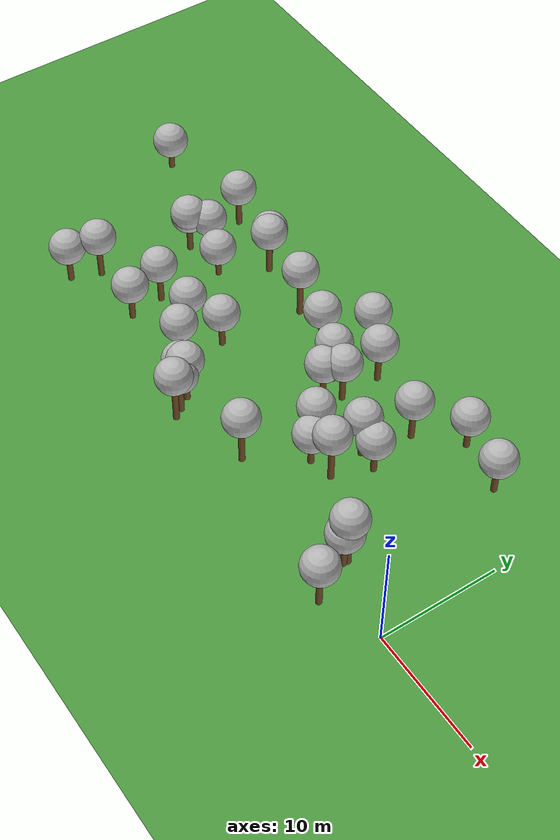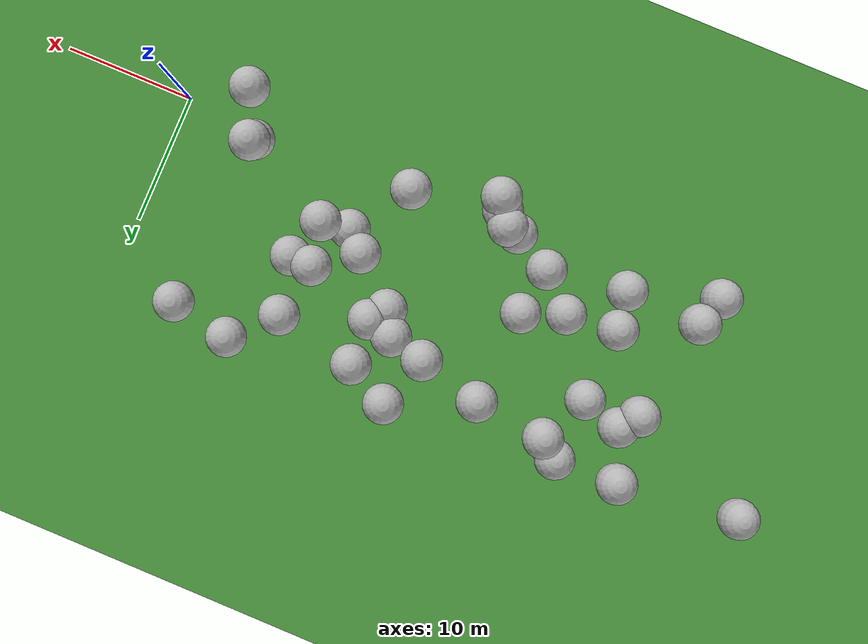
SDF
<sdf version="1.5">
 <world name="default">
  <model name="tree_simple498">
   <static>1</static>
   <link name="link">
    <pose>0 0 0.1 0 -0 0</pose>
    <collision name="collision_trunk">
     <pose>0 0 2 0 -0 0</pose>
     <geometry><cylinder><radius>0.25</radius><length>4</length></cylinder></geometry>
    </collision>
    <collision name="collision_treetop">
     <pose>0 0 5.2 0 -0 0</pose>
     <geometry><sphere><radius>1.5</radius></sphere></geometry>
    </collision>
    <visual name="trunk">
     <pose>0 0 2 0 -0 0</pose>
     <geometry><cylinder><radius>0.25</radius><length>4</length></cylinder></geometry>
     <material>
      <script>
       <uri>model://tree_simple/scripts</uri>
       <uri>model://tree_simple/materials/textures</uri>
       <name>TreeSimple/Trunk</name>
      </script>
     </material>
    </visual>
    <visual name="treetop">
     <pose>0 0 5.2 0 -0 0</pose>
     <geometry><sphere><radius>1.5</radius></sphere></geometry>
     <material>
      <script>
       <uri>model://tree_simple/scripts</uri>
       <uri>model://tree_simple/materials/textures</uri>
       <name>TreeSimple/Treetop</name>
      </script>
     </material>
    </visual>
   </link>
   <pose>-20.062069779 9.09254194943 -1.4793378975880083 0 -0 0</pose>
  </model>
  <model name="tree_simple488">
   <static>1</static>
   <link name="link">
    <pose>0 0 0.1 0 -0 0</pose>
    <collision name="collision_trunk">
     <pose>0 0 2 0 -0 0</pose>
     <geometry><cylinder><radius>0.25</radius><length>4</length></cylinder></geometry>
    </collision>
    <collision name="collision_treetop">
     <pose>0 0 5.2 0 -0 0</pose>
     <geometry><sphere><radius>1.5</radius></sphere></geometry>
    </collision>
    <visual name="trunk">
     <pose>0 0 2 0 -0 0</pose>
     <geometry><cylinder><radius>0.25</radius><length>4</length></cylinder></geometry>
     <material>
      <script>
       <uri>model://tree_simple/scripts</uri>
       <uri>model://tree_simple/materials/textures</uri>
       <name>TreeSimple/Trunk</name>
      </script>
     </material>
    </visual>
    <visual name="treetop">
     <pose>0 0 5.2 0 -0 0</pose>
     <geometry><sphere><radius>1.5</radius></sphere></geometry>
     <material>
      <script>
       <uri>model://tree_simple/scripts</uri>
       <uri>model://tree_simple/materials/textures</uri>
       <name>TreeSimple/Treetop</name>
      </script>
     </material>
    </visual>
   </link>
   <pose>-13.1215818691 12.435953241 -1.1137479919838673 0 -0 0</pose>
  </model>
  <model name="tree_simple460">
   <static>1</static>
   <link name="link">
    <pose>0 0 0.1 0 -0 0</pose>
    <collision name="collision_trunk">
     <pose>0 0 2 0 -0 0</pose>
     <geometry><cylinder><radius>0.25</radius><length>4</length></cylinder></geometry>
    </collision>
    <collision name="collision_treetop">
     <pose>0 0 5.2 0 -0 0</pose>
     <geometry><sphere><radius>1.5</radius></sphere></geometry>
    </collision>
    <visual name="trunk">
     <pose>0 0 2 0 -0 0</pose>
     <geometry><cylinder><radius>0.25</radius><length>4</length></cylinder></geometry>
     <material>
      <script>
       <uri>model://tree_simple/scripts</uri>
       <uri>model://tree_simple/materials/textures</uri>
       <name>TreeSimple/Trunk</name>
      </script>
     </material>
    </visual>
    <visual name="treetop">
     <pose>0 0 5.2 0 -0 0</pose>
     <geometry><sphere><radius>1.5</radius></sphere></geometry>
     <material>
      <script>
       <uri>model://tree_simple/scripts</uri>
       <uri>model://tree_simple/materials/textures</uri>
       <name>TreeSimple/Treetop</name>
      </script>
     </material>
    </visual>
   </link>
   <pose>-19.1263542494 10.273291852 -1.1815535461366933 0 -0 0</pose>
  </model>
  <model name="tree_simple455">
   <static>1</static>
   <link name="link">
    <pose>0 0 0.1 0 -0 0</pose>
    <collision name="collision_trunk">
     <pose>0 0 2 0 -0 0</pose>
     <geometry><cylinder><radius>0.25</radius><length>4</length></cylinder></geometry>
    </collision>
    <collision name="collision_treetop">
     <pose>0 0 5.2 0 -0 0</pose>
     <geometry><sphere><radius>1.5</radius></sphere></geometry>
    </collision>
    <visual name="trunk">
     <pose>0 0 2 0 -0 0</pose>
     <geometry><cylinder><radius>0.25</radius><length>4</length></cylinder></geometry>
     <material>
      <script>
       <uri>model://tree_simple/scripts</uri>
       <uri>model://tree_simple/materials/textures</uri>
       <name>TreeSimple/Trunk</name>
      </script>
     </material>
    </visual>
    <visual name="treetop">
     <pose>0 0 5.2 0 -0 0</pose>
     <geometry><sphere><radius>1.5</radius></sphere></geometry>
     <material>
      <script>
       <uri>model://tree_simple/scripts</uri>
       <uri>model://tree_simple/materials/textures</uri>
       <name>TreeSimple/Treetop</name>
      </script>
     </material>
    </visual>
   </link>
   <pose>-32.1346913749 4.45623468988 -1.7658312951233366 0 -0 0</pose>
  </model>
  <model name="tree_simple453">
   <static>1</static>
   <link name="link">
    <pose>0 0 0.1 0 -0 0</pose>
    <collision name="collision_trunk">
     <pose>0 0 2 0 -0 0</pose>
     <geometry><cylinder><radius>0.25</radius><length>4</length></cylinder></geometry>
    </collision>
    <collision name="collision_treetop">
     <pose>0 0 5.2 0 -0 0</pose>
     <geometry><sphere><radius>1.5</radius></sphere></geometry>
    </collision>
    <visual name="trunk">
     <pose>0 0 2 0 -0 0</pose>
     <geometry><cylinder><radius>0.25</radius><length>4</length></cylinder></geometry>
     <material>
      <script>
       <uri>model://tree_simple/scripts</uri>
       <uri>model://tree_simple/materials/textures</uri>
       <name>TreeSimple/Trunk</name>
      </script>
     </material>
    </visual>
    <visual name="treetop">
     <pose>0 0 5.2 0 -0 0</pose>
     <geometry><sphere><radius>1.5</radius></sphere></geometry>
     <material>
      <script>
       <uri>model://tree_simple/scripts</uri>
       <uri>model://tree_simple/materials/textures</uri>
       <name>TreeSimple/Treetop</name>
      </script>
     </material>
    </visual>
   </link>
   <pose>-12.135251061 8.19022164755 -1.8356427388024132 0 -0 0</pose>
  </model>
  <model name="tree_simple448">
   <static>1</static>
   <link name="link">
    <pose>0 0 0.1 0 -0 0</pose>
    <collision name="collision_trunk">
     <pose>0 0 2 0 -0 0</pose>
     <geometry><cylinder><radius>0.25</radius><length>4</length></cylinder></geometry>
    </collision>
    <collision name="collision_treetop">
     <pose>0 0 5.2 0 -0 0</pose>
     <geometry><sphere><radius>1.5</radius></sphere></geometry>
    </collision>
    <visual name="trunk">
     <pose>0 0 2 0 -0 0</pose>
     <geometry><cylinder><radius>0.25</radius><length>4</length></cylinder></geometry>
     <material>
      <script>
       <uri>model://tree_simple/scripts</uri>
       <uri>model://tree_simple/materials/textures</uri>
       <name>TreeSimple/Trunk</name>
      </script>
     </material>
    </visual>
    <visual name="treetop">
     <pose>0 0 5.2 0 -0 0</pose>
     <geometry><sphere><radius>1.5</radius></sphere></geometry>
     <material>
      <script>
       <uri>model://tree_simple/scripts</uri>
       <uri>model://tree_simple/materials/textures</uri>
       <name>TreeSimple/Treetop</name>
      </script>
     </material>
    </visual>
   </link>
   <pose>-24.5519753109 -1.42546954192 -0.4938206606967188 0 -0 0</pose>
  </model>
  <model name="tree_simple444">
   <static>1</static>
   <link name="link">
    <pose>0 0 0.1 0 -0 0</pose>
    <collision name="collision_trunk">
     <pose>0 0 2 0 -0 0</pose>
     <geometry><cylinder><radius>0.25</radius><length>4</length></cylinder></geometry>
    </collision>
    <collision name="collision_treetop">
     <pose>0 0 5.2 0 -0 0</pose>
     <geometry><sphere><radius>1.5</radius></sphere></geometry>
    </collision>
    <visual name="trunk">
     <pose>0 0 2 0 -0 0</pose>
     <geometry><cylinder><radius>0.25</radius><length>4</length></cylinder></geometry>
     <material>
      <script>
       <uri>model://tree_simple/scripts</uri>
       <uri>model://tree_simple/materials/textures</uri>
       <name>TreeSimple/Trunk</name>
      </script>
     </material>
    </visual>
    <visual name="treetop">
     <pose>0 0 5.2 0 -0 0</pose>
     <geometry><sphere><radius>1.5</radius></sphere></geometry>
     <material>
      <script>
       <uri>model://tree_simple/scripts</uri>
       <uri>model://tree_simple/materials/textures</uri>
       <name>TreeSimple/Treetop</name>
      </script>
     </material>
    </visual>
   </link>
   <pose>-23.7375888222 11.4825776361 -0.14588349371203324 0 -0 0</pose>
  </model>
  <model name="tree_simple437">
   <static>1</static>
   <link name="link">
    <pose>0 0 0.1 0 -0 0</pose>
    <collision name="collision_trunk">
     <pose>0 0 2 0 -0 0</pose>
     <geometry><cylinder><radius>0.25</radius><length>4</length></cylinder></geometry>
    </collision>
    <collision name="collision_treetop">
     <pose>0 0 5.2 0 -0 0</pose>
     <geometry><sphere><radius>1.5</radius></sphere></geometry>
    </collision>
    <visual name="trunk">
     <pose>0 0 2 0 -0 0</pose>
     <geometry><cylinder><radius>0.25</radius><length>4</length></cylinder></geometry>
     <material>
      <script>
       <uri>model://tree_simple/scripts</uri>
       <uri>model://tree_simple/materials/textures</uri>
       <name>TreeSimple/Trunk</name>
      </script>
     </material>
    </visual>
    <visual name="treetop">
     <pose>0 0 5.2 0 -0 0</pose>
     <geometry><sphere><radius>1.5</radius></sphere></geometry>
     <material>
      <script>
       <uri>model://tree_simple/scripts</uri>
       <uri>model://tree_simple/materials/textures</uri>
       <name>TreeSimple/Treetop</name>
      </script>
     </material>
    </visual>
   </link>
   <pose>-39.7170299969 9.24665194356 -1.6427686813008724 0 -0 0</pose>
  </model>
  <model name="tree_simple424">
   <static>1</static>
   <link name="link">
    <pose>0 0 0.1 0 -0 0</pose>
    <collision name="collision_trunk">
     <pose>0 0 2 0 -0 0</pose>
     <geometry><cylinder><radius>0.25</radius><length>4</length></cylinder></geometry>
    </collision>
    <collision name="collision_treetop">
     <pose>0 0 5.2 0 -0 0</pose>
     <geometry><sphere><radius>1.5</radius></sphere></geometry>
    </collision>
    <visual name="trunk">
     <pose>0 0 2 0 -0 0</pose>
     <geometry><cylinder><radius>0.25</radius><length>4</length></cylinder></geometry>
     <material>
      <script>
       <uri>model://tree_simple/scripts</uri>
       <uri>model://tree_simple/materials/textures</uri>
       <name>TreeSimple/Trunk</name>
      </script>
     </material>
    </visual>
    <visual name="treetop">
     <pose>0 0 5.2 0 -0 0</pose>
     <geometry><sphere><radius>1.5</radius></sphere></geometry>
     <material>
      <script>
       <uri>model://tree_simple/scripts</uri>
       <uri>model://tree_simple/materials/textures</uri>
       <name>TreeSimple/Treetop</name>
      </script>
     </material>
    </visual>
   </link>
   <pose>-16.7770993139 6.12178979124 -1.2570149583012133 0 -0 0</pose>
  </model>
  <model name="tree_simple393">
   <static>1</static>
   <link name="link">
    <pose>0 0 0.1 0 -0 0</pose>
    <collision name="collision_trunk">
     <pose>0 0 2 0 -0 0</pose>
     <geometry><cylinder><radius>0.25</radius><length>4</length></cylinder></geometry>
    </collision>
    <collision name="collision_treetop">
     <pose>0 0 5.2 0 -0 0</pose>
     <geometry><sphere><radius>1.5</radius></sphere></geometry>
    </collision>
    <visual name="trunk">
     <pose>0 0 2 0 -0 0</pose>
     <geometry><cylinder><radius>0.25</radius><length>4</length></cylinder></geometry>
     <material>
      <script>
       <uri>model://tree_simple/scripts</uri>
       <uri>model://tree_simple/materials/textures</uri>
       <name>TreeSimple/Trunk</name>
      </script>
     </material>
    </visual>
    <visual name="treetop">
     <pose>0 0 5.2 0 -0 0</pose>
     <geometry><sphere><radius>1.5</radius></sphere></geometry>
     <material>
      <script>
       <uri>model://tree_simple/scripts</uri>
       <uri>model://tree_simple/materials/textures</uri>
       <name>TreeSimple/Treetop</name>
      </script>
     </material>
    </visual>
   </link>
   <pose>-19.2161378336 13.717868908 -1.2024127737127024 0 -0 0</pose>
  </model>
  <model name="tree_simple383">
   <static>1</static>
   <link name="link">
    <pose>0 0 0.1 0 -0 0</pose>
    <collision name="collision_trunk">
     <pose>0 0 2 0 -0 0</pose>
     <geometry><cylinder><radius>0.25</radius><length>4</length></cylinder></geometry>
    </collision>
    <collision name="collision_treetop">
     <pose>0 0 5.2 0 -0 0</pose>
     <geometry><sphere><radius>1.5</radius></sphere></geometry>
    </collision>
    <visual name="trunk">
     <pose>0 0 2 0 -0 0</pose>
     <geometry><cylinder><radius>0.25</radius><length>4</length></cylinder></geometry>
     <material>
      <script>
       <uri>model://tree_simple/scripts</uri>
       <uri>model://tree_simple/materials/textures</uri>
       <name>TreeSimple/Trunk</name>
      </script>
     </material>
    </visual>
    <visual name="treetop">
     <pose>0 0 5.2 0 -0 0</pose>
     <geometry><sphere><radius>1.5</radius></sphere></geometry>
     <material>
      <script>
       <uri>model://tree_simple/scripts</uri>
       <uri>model://tree_simple/materials/textures</uri>
       <name>TreeSimple/Treetop</name>
      </script>
     </material>
    </visual>
   </link>
   <pose>-39.6589333601 9.20891740709 -1.3316036916866127 0 -0 0</pose>
  </model>
  <model name="tree_simple360">
   <static>1</static>
   <link name="link">
    <pose>0 0 0.1 0 -0 0</pose>
    <collision name="collision_trunk">
     <pose>0 0 2 0 -0 0</pose>
     <geometry><cylinder><radius>0.25</radius><length>4</length></cylinder></geometry>
    </collision>
    <collision name="collision_treetop">
     <pose>0 0 5.2 0 -0 0</pose>
     <geometry><sphere><radius>1.5</radius></sphere></geometry>
    </collision>
    <visual name="trunk">
     <pose>0 0 2 0 -0 0</pose>
     <geometry><cylinder><radius>0.25</radius><length>4</length></cylinder></geometry>
     <material>
      <script>
       <uri>model://tree_simple/scripts</uri>
       <uri>model://tree_simple/materials/textures</uri>
       <name>TreeSimple/Trunk</name>
      </script>
     </material>
    </visual>
    <visual name="treetop">
     <pose>0 0 5.2 0 -0 0</pose>
     <geometry><sphere><radius>1.5</radius></sphere></geometry>
     <material>
      <script>
       <uri>model://tree_simple/scripts</uri>
       <uri>model://tree_simple/materials/textures</uri>
       <name>TreeSimple/Treetop</name>
      </script>
     </material>
    </visual>
   </link>
   <pose>-13.8761955988 8.30702560736 -1.019336801228012 0 -0 0</pose>
  </model>
  <model name="tree_simple338">
   <static>1</static>
   <link name="link">
    <pose>0 0 0.1 0 -0 0</pose>
    <collision name="collision_trunk">
     <pose>0 0 2 0 -0 0</pose>
     <geometry><cylinder><radius>0.25</radius><length>4</length></cylinder></geometry>
    </collision>
    <collision name="collision_treetop">
     <pose>0 0 5.2 0 -0 0</pose>
     <geometry><sphere><radius>1.5</radius></sphere></geometry>
    </collision>
    <visual name="trunk">
     <pose>0 0 2 0 -0 0</pose>
     <geometry><cylinder><radius>0.25</radius><length>4</length></cylinder></geometry>
     <material>
      <script>
       <uri>model://tree_simple/scripts</uri>
       <uri>model://tree_simple/materials/textures</uri>
       <name>TreeSimple/Trunk</name>
      </script>
     </material>
    </visual>
    <visual name="treetop">
     <pose>0 0 5.2 0 -0 0</pose>
     <geometry><sphere><radius>1.5</radius></sphere></geometry>
     <material>
      <script>
       <uri>model://tree_simple/scripts</uri>
       <uri>model://tree_simple/materials/textures</uri>
       <name>TreeSimple/Treetop</name>
      </script>
     </material>
    </visual>
   </link>
   <pose>-22.4236352143 15.4465495723 -1.4851031359509668 0 -0 0</pose>
  </model>
  <model name="tree_simple333">
   <static>1</static>
   <link name="link">
    <pose>0 0 0.1 0 -0 0</pose>
    <collision name="collision_trunk">
     <pose>0 0 2 0 -0 0</pose>
     <geometry><cylinder><radius>0.25</radius><length>4</length></cylinder></geometry>
    </collision>
    <collision name="collision_treetop">
     <pose>0 0 5.2 0 -0 0</pose>
     <geometry><sphere><radius>1.5</radius></sphere></geometry>
    </collision>
    <visual name="trunk">
     <pose>0 0 2 0 -0 0</pose>
     <geometry><cylinder><radius>0.25</radius><length>4</length></cylinder></geometry>
     <material>
      <script>
       <uri>model://tree_simple/scripts</uri>
       <uri>model://tree_simple/materials/textures</uri>
       <name>TreeSimple/Trunk</name>
      </script>
     </material>
    </visual>
    <visual name="treetop">
     <pose>0 0 5.2 0 -0 0</pose>
     <geometry><sphere><radius>1.5</radius></sphere></geometry>
     <material>
      <script>
       <uri>model://tree_simple/scripts</uri>
       <uri>model://tree_simple/materials/textures</uri>
       <name>TreeSimple/Treetop</name>
      </script>
     </material>
    </visual>
   </link>
   <pose>-39.9457212117 14.2708629915 -1.3461034376032999 0 -0 0</pose>
  </model>
  <model name="tree_simple289">
   <static>1</static>
   <link name="link">
    <pose>0 0 0.1 0 -0 0</pose>
    <collision name="collision_trunk">
     <pose>0 0 2 0 -0 0</pose>
     <geometry><cylinder><radius>0.25</radius><length>4</length></cylinder></geometry>
    </collision>
    <collision name="collision_treetop">
     <pose>0 0 5.2 0 -0 0</pose>
     <geometry><sphere><radius>1.5</radius></sphere></geometry>
    </collision>
    <visual name="trunk">
     <pose>0 0 2 0 -0 0</pose>
     <geometry><cylinder><radius>0.25</radius><length>4</length></cylinder></geometry>
     <material>
      <script>
       <uri>model://tree_simple/scripts</uri>
       <uri>model://tree_simple/materials/textures</uri>
       <name>TreeSimple/Trunk</name>
      </script>
     </material>
    </visual>
    <visual name="treetop">
     <pose>0 0 5.2 0 -0 0</pose>
     <geometry><sphere><radius>1.5</radius></sphere></geometry>
     <material>
      <script>
       <uri>model://tree_simple/scripts</uri>
       <uri>model://tree_simple/materials/textures</uri>
       <name>TreeSimple/Treetop</name>
      </script>
     </material>
    </visual>
   </link>
   <pose>-35.9302757768 4.10324936235 -1.3120825223756591 0 -0 0</pose>
  </model>
  <model name="tree_simple284">
   <static>1</static>
   <link name="link">
    <pose>0 0 0.1 0 -0 0</pose>
    <collision name="collision_trunk">
     <pose>0 0 2 0 -0 0</pose>
     <geometry><cylinder><radius>0.25</radius><length>4</length></cylinder></geometry>
    </collision>
    <collision name="collision_treetop">
     <pose>0 0 5.2 0 -0 0</pose>
     <geometry><sphere><radius>1.5</radius></sphere></geometry>
    </collision>
    <visual name="trunk">
     <pose>0 0 2 0 -0 0</pose>
     <geometry><cylinder><radius>0.25</radius><length>4</length></cylinder></geometry>
     <material>
      <script>
       <uri>model://tree_simple/scripts</uri>
       <uri>model://tree_simple/materials/textures</uri>
       <name>TreeSimple/Trunk</name>
      </script>
     </material>
    </visual>
    <visual name="treetop">
     <pose>0 0 5.2 0 -0 0</pose>
     <geometry><sphere><radius>1.5</radius></sphere></geometry>
     <material>
      <script>
       <uri>model://tree_simple/scripts</uri>
       <uri>model://tree_simple/materials/textures</uri>
       <name>TreeSimple/Treetop</name>
      </script>
     </material>
    </visual>
   </link>
   <pose>-18.3910783374 0.559962709575 -0.4614931438293405 0 -0 0</pose>
  </model>
  <model name="tree_simple282">
   <static>1</static>
   <link name="link">
    <pose>0 0 0.1 0 -0 0</pose>
    <collision name="collision_trunk">
     <pose>0 0 2 0 -0 0</pose>
     <geometry><cylinder><radius>0.25</radius><length>4</length></cylinder></geometry>
    </collision>
    <collision name="collision_treetop">
     <pose>0 0 5.2 0 -0 0</pose>
     <geometry><sphere><radius>1.5</radius></sphere></geometry>
    </collision>
    <visual name="trunk">
     <pose>0 0 2 0 -0 0</pose>
     <geometry><cylinder><radius>0.25</radius><length>4</length></cylinder></geometry>
     <material>
      <script>
       <uri>model://tree_simple/scripts</uri>
       <uri>model://tree_simple/materials/textures</uri>
       <name>TreeSimple/Trunk</name>
      </script>
     </material>
    </visual>
    <visual name="treetop">
     <pose>0 0 5.2 0 -0 0</pose>
     <geometry><sphere><radius>1.5</radius></sphere></geometry>
     <material>
      <script>
       <uri>model://tree_simple/scripts</uri>
       <uri>model://tree_simple/materials/textures</uri>
       <name>TreeSimple/Treetop</name>
      </script>
     </material>
    </visual>
   </link>
   <pose>-10.116665752 15.3935200089 -1.9448584523896542 0 -0 0</pose>
  </model>
  <model name="tree_simple279">
   <static>1</static>
   <link name="link">
    <pose>0 0 0.1 0 -0 0</pose>
    <collision name="collision_trunk">
     <pose>0 0 2 0 -0 0</pose>
     <geometry><cylinder><radius>0.25</radius><length>4</length></cylinder></geometry>
    </collision>
    <collision name="collision_treetop">
     <pose>0 0 5.2 0 -0 0</pose>
     <geometry><sphere><radius>1.5</radius></sphere></geometry>
    </collision>
    <visual name="trunk">
     <pose>0 0 2 0 -0 0</pose>
     <geometry><cylinder><radius>0.25</radius><length>4</length></cylinder></geometry>
     <material>
      <script>
       <uri>model://tree_simple/scripts</uri>
       <uri>model://tree_simple/materials/textures</uri>
       <name>TreeSimple/Trunk</name>
      </script>
     </material>
    </visual>
    <visual name="treetop">
     <pose>0 0 5.2 0 -0 0</pose>
     <geometry><sphere><radius>1.5</radius></sphere></geometry>
     <material>
      <script>
       <uri>model://tree_simple/scripts</uri>
       <uri>model://tree_simple/materials/textures</uri>
       <name>TreeSimple/Treetop</name>
      </script>
     </material>
    </visual>
   </link>
   <pose>-25.0449823603 -0.682470499347 -1.2830541724833953 0 -0 0</pose>
  </model>
  <model name="tree_simple252">
   <static>1</static>
   <link name="link">
    <pose>0 0 0.1 0 -0 0</pose>
    <collision name="collision_trunk">
     <pose>0 0 2 0 -0 0</pose>
     <geometry><cylinder><radius>0.25</radius><length>4</length></cylinder></geometry>
    </collision>
    <collision name="collision_treetop">
     <pose>0 0 5.2 0 -0 0</pose>
     <geometry><sphere><radius>1.5</radius></sphere></geometry>
    </collision>
    <visual name="trunk">
     <pose>0 0 2 0 -0 0</pose>
     <geometry><cylinder><radius>0.25</radius><length>4</length></cylinder></geometry>
     <material>
      <script>
       <uri>model://tree_simple/scripts</uri>
       <uri>model://tree_simple/materials/textures</uri>
       <name>TreeSimple/Trunk</name>
      </script>
     </material>
    </visual>
    <visual name="treetop">
     <pose>0 0 5.2 0 -0 0</pose>
     <geometry><sphere><radius>1.5</radius></sphere></geometry>
     <material>
      <script>
       <uri>model://tree_simple/scripts</uri>
       <uri>model://tree_simple/materials/textures</uri>
       <name>TreeSimple/Treetop</name>
      </script>
     </material>
    </visual>
   </link>
   <pose>-49.2857495086 13.2768548842 -2.3961734688940517 0 -0 0</pose>
  </model>
  <model name="tree_simple245">
   <static>1</static>
   <link name="link">
    <pose>0 0 0.1 0 -0 0</pose>
    <collision name="collision_trunk">
     <pose>0 0 2 0 -0 0</pose>
     <geometry><cylinder><radius>0.25</radius><length>4</length></cylinder></geometry>
    </collision>
    <collision name="collision_treetop">
     <pose>0 0 5.2 0 -0 0</pose>
     <geometry><sphere><radius>1.5</radius></sphere></geometry>
    </collision>
    <visual name="trunk">
     <pose>0 0 2 0 -0 0</pose>
     <geometry><cylinder><radius>0.25</radius><length>4</length></cylinder></geometry>
     <material>
      <script>
       <uri>model://tree_simple/scripts</uri>
       <uri>model://tree_simple/materials/textures</uri>
       <name>TreeSimple/Trunk</name>
      </script>
     </material>
    </visual>
    <visual name="treetop">
     <pose>0 0 5.2 0 -0 0</pose>
     <geometry><sphere><radius>1.5</radius></sphere></geometry>
     <material>
      <script>
       <uri>model://tree_simple/scripts</uri>
       <uri>model://tree_simple/materials/textures</uri>
       <name>TreeSimple/Treetop</name>
      </script>
     </material>
    </visual>
   </link>
   <pose>-25.7973722527 0.315231770046 -0.9262568762961038 0 -0 0</pose>
  </model>
  <model name="tree_simple231">
   <static>1</static>
   <link name="link">
    <pose>0 0 0.1 0 -0 0</pose>
    <collision name="collision_trunk">
     <pose>0 0 2 0 -0 0</pose>
     <geometry><cylinder><radius>0.25</radius><length>4</length></cylinder></geometry>
    </collision>
    <collision name="collision_treetop">
     <pose>0 0 5.2 0 -0 0</pose>
     <geometry><sphere><radius>1.5</radius></sphere></geometry>
    </collision>
    <visual name="trunk">
     <pose>0 0 2 0 -0 0</pose>
     <geometry><cylinder><radius>0.25</radius><length>4</length></cylinder></geometry>
     <material>
      <script>
       <uri>model://tree_simple/scripts</uri>
       <uri>model://tree_simple/materials/textures</uri>
       <name>TreeSimple/Trunk</name>
      </script>
     </material>
    </visual>
    <visual name="treetop">
     <pose>0 0 5.2 0 -0 0</pose>
     <geometry><sphere><radius>1.5</radius></sphere></geometry>
     <material>
      <script>
       <uri>model://tree_simple/scripts</uri>
       <uri>model://tree_simple/materials/textures</uri>
       <name>TreeSimple/Treetop</name>
      </script>
     </material>
    </visual>
   </link>
   <pose>-35.8338732543 9.59486776234 -2.3395503782205385 0 -0 0</pose>
  </model>
  <model name="tree_simple228">
   <static>1</static>
   <link name="link">
    <pose>0 0 0.1 0 -0 0</pose>
    <collision name="collision_trunk">
     <pose>0 0 2 0 -0 0</pose>
     <geometry><cylinder><radius>0.25</radius><length>4</length></cylinder></geometry>
    </collision>
    <collision name="collision_treetop">
     <pose>0 0 5.2 0 -0 0</pose>
     <geometry><sphere><radius>1.5</radius></sphere></geometry>
    </collision>
    <visual name="trunk">
     <pose>0 0 2 0 -0 0</pose>
     <geometry><cylinder><radius>0.25</radius><length>4</length></cylinder></geometry>
     <material>
      <script>
       <uri>model://tree_simple/scripts</uri>
       <uri>model://tree_simple/materials/textures</uri>
       <name>TreeSimple/Trunk</name>
      </script>
     </material>
    </visual>
    <visual name="treetop">
     <pose>0 0 5.2 0 -0 0</pose>
     <geometry><sphere><radius>1.5</radius></sphere></geometry>
     <material>
      <script>
       <uri>model://tree_simple/scripts</uri>
       <uri>model://tree_simple/materials/textures</uri>
       <name>TreeSimple/Treetop</name>
      </script>
     </material>
    </visual>
   </link>
   <pose>-28.4416918888 12.679152397 -0.4659023809379157 0 -0 0</pose>
  </model>
  <model name="tree_simple226">
   <static>1</static>
   <link name="link">
    <pose>0 0 0.1 0 -0 0</pose>
    <collision name="collision_trunk">
     <pose>0 0 2 0 -0 0</pose>
     <geometry><cylinder><radius>0.25</radius><length>4</length></cylinder></geometry>
    </collision>
    <collision name="collision_treetop">
     <pose>0 0 5.2 0 -0 0</pose>
     <geometry><sphere><radius>1.5</radius></sphere></geometry>
    </collision>
    <visual name="trunk">
     <pose>0 0 2 0 -0 0</pose>
     <geometry><cylinder><radius>0.25</radius><length>4</length></cylinder></geometry>
     <material>
      <script>
       <uri>model://tree_simple/scripts</uri>
       <uri>model://tree_simple/materials/textures</uri>
       <name>TreeSimple/Trunk</name>
      </script>
     </material>
    </visual>
    <visual name="treetop">
     <pose>0 0 5.2 0 -0 0</pose>
     <geometry><sphere><radius>1.5</radius></sphere></geometry>
     <material>
      <script>
       <uri>model://tree_simple/scripts</uri>
       <uri>model://tree_simple/materials/textures</uri>
       <name>TreeSimple/Treetop</name>
      </script>
     </material>
    </visual>
   </link>
   <pose>-15.3498793375 4.7340721764 -2.045307106157314 0 -0 0</pose>
  </model>
  <model name="tree_simple218">
   <static>1</static>
   <link name="link">
    <pose>0 0 0.1 0 -0 0</pose>
    <collision name="collision_trunk">
     <pose>0 0 2 0 -0 0</pose>
     <geometry><cylinder><radius>0.25</radius><length>4</length></cylinder></geometry>
    </collision>
    <collision name="collision_treetop">
     <pose>0 0 5.2 0 -0 0</pose>
     <geometry><sphere><radius>1.5</radius></sphere></geometry>
    </collision>
    <visual name="trunk">
     <pose>0 0 2 0 -0 0</pose>
     <geometry><cylinder><radius>0.25</radius><length>4</length></cylinder></geometry>
     <material>
      <script>
       <uri>model://tree_simple/scripts</uri>
       <uri>model://tree_simple/materials/textures</uri>
       <name>TreeSimple/Trunk</name>
      </script>
     </material>
    </visual>
    <visual name="treetop">
     <pose>0 0 5.2 0 -0 0</pose>
     <geometry><sphere><radius>1.5</radius></sphere></geometry>
     <material>
      <script>
       <uri>model://tree_simple/scripts</uri>
       <uri>model://tree_simple/materials/textures</uri>
       <name>TreeSimple/Treetop</name>
      </script>
     </material>
    </visual>
   </link>
   <pose>-35.4441673734 14.4296379782 -2.5 0 -0 0</pose>
  </model>
  <model name="tree_simple209">
   <static>1</static>
   <link name="link">
    <pose>0 0 0.1 0 -0 0</pose>
    <collision name="collision_trunk">
     <pose>0 0 2 0 -0 0</pose>
     <geometry><cylinder><radius>0.25</radius><length>4</length></cylinder></geometry>
    </collision>
    <collision name="collision_treetop">
     <pose>0 0 5.2 0 -0 0</pose>
     <geometry><sphere><radius>1.5</radius></sphere></geometry>
    </collision>
    <visual name="trunk">
     <pose>0 0 2 0 -0 0</pose>
     <geometry><cylinder><radius>0.25</radius><length>4</length></cylinder></geometry>
     <material>
      <script>
       <uri>model://tree_simple/scripts</uri>
       <uri>model://tree_simple/materials/textures</uri>
       <name>TreeSimple/Trunk</name>
      </script>
     </material>
    </visual>
    <visual name="treetop">
     <pose>0 0 5.2 0 -0 0</pose>
     <geometry><sphere><radius>1.5</radius></sphere></geometry>
     <material>
      <script>
       <uri>model://tree_simple/scripts</uri>
       <uri>model://tree_simple/materials/textures</uri>
       <name>TreeSimple/Treetop</name>
      </script>
     </material>
    </visual>
   </link>
   <pose>-33.8233046725 13.2827932197 -0.9823365383760523 0 -0 0</pose>
  </model>
  <model name="tree_simple199">
   <static>1</static>
   <link name="link">
    <pose>0 0 0.1 0 -0 0</pose>
    <collision name="collision_trunk">
     <pose>0 0 2 0 -0 0</pose>
     <geometry><cylinder><radius>0.25</radius><length>4</length></cylinder></geometry>
    </collision>
    <collision name="collision_treetop">
     <pose>0 0 5.2 0 -0 0</pose>
     <geometry><sphere><radius>1.5</radius></sphere></geometry>
    </collision>
    <visual name="trunk">
     <pose>0 0 2 0 -0 0</pose>
     <geometry><cylinder><radius>0.25</radius><length>4</length></cylinder></geometry>
     <material>
      <script>
       <uri>model://tree_simple/scripts</uri>
       <uri>model://tree_simple/materials/textures</uri>
       <name>TreeSimple/Trunk</name>
      </script>
     </material>
    </visual>
    <visual name="treetop">
     <pose>0 0 5.2 0 -0 0</pose>
     <geometry><sphere><radius>1.5</radius></sphere></geometry>
     <material>
      <script>
       <uri>model://tree_simple/scripts</uri>
       <uri>model://tree_simple/materials/textures</uri>
       <name>TreeSimple/Treetop</name>
      </script>
     </material>
    </visual>
   </link>
   <pose>-38.6601694544 10.5136228042 -1.7612303220554433 0 -0 0</pose>
  </model>
  <model name="tree_simple187">
   <static>1</static>
   <link name="link">
    <pose>0 0 0.1 0 -0 0</pose>
    <collision name="collision_trunk">
     <pose>0 0 2 0 -0 0</pose>
     <geometry><cylinder><radius>0.25</radius><length>4</length></cylinder></geometry>
    </collision>
    <collision name="collision_treetop">
     <pose>0 0 5.2 0 -0 0</pose>
     <geometry><sphere><radius>1.5</radius></sphere></geometry>
    </collision>
    <visual name="trunk">
     <pose>0 0 2 0 -0 0</pose>
     <geometry><cylinder><radius>0.25</radius><length>4</length></cylinder></geometry>
     <material>
      <script>
       <uri>model://tree_simple/scripts</uri>
       <uri>model://tree_simple/materials/textures</uri>
       <name>TreeSimple/Trunk</name>
      </script>
     </material>
    </visual>
    <visual name="treetop">
     <pose>0 0 5.2 0 -0 0</pose>
     <geometry><sphere><radius>1.5</radius></sphere></geometry>
     <material>
      <script>
       <uri>model://tree_simple/scripts</uri>
       <uri>model://tree_simple/materials/textures</uri>
       <name>TreeSimple/Treetop</name>
      </script>
     </material>
    </visual>
   </link>
   <pose>-6.45553635196 1.79140972094 -0.14116452182332107 0 -0 0</pose>
  </model>
  <model name="tree_simple165">
   <static>1</static>
   <link name="link">
    <pose>0 0 0.1 0 -0 0</pose>
    <collision name="collision_trunk">
     <pose>0 0 2 0 -0 0</pose>
     <geometry><cylinder><radius>0.25</radius><length>4</length></cylinder></geometry>
    </collision>
    <collision name="collision_treetop">
     <pose>0 0 5.2 0 -0 0</pose>
     <geometry><sphere><radius>1.5</radius></sphere></geometry>
    </collision>
    <visual name="trunk">
     <pose>0 0 2 0 -0 0</pose>
     <geometry><cylinder><radius>0.25</radius><length>4</length></cylinder></geometry>
     <material>
      <script>
       <uri>model://tree_simple/scripts</uri>
       <uri>model://tree_simple/materials/textures</uri>
       <name>TreeSimple/Trunk</name>
      </script>
     </material>
    </visual>
    <visual name="treetop">
     <pose>0 0 5.2 0 -0 0</pose>
     <geometry><sphere><radius>1.5</radius></sphere></geometry>
     <material>
      <script>
       <uri>model://tree_simple/scripts</uri>
       <uri>model://tree_simple/materials/textures</uri>
       <name>TreeSimple/Treetop</name>
      </script>
     </material>
    </visual>
   </link>
   <pose>-6.476660544 1.43780692284 -1.5895549435826526 0 -0 0</pose>
  </model>
  <model name="tree_simple163">
   <static>1</static>
   <link name="link">
    <pose>0 0 0.1 0 -0 0</pose>
    <collision name="collision_trunk">
     <pose>0 0 2 0 -0 0</pose>
     <geometry><cylinder><radius>0.25</radius><length>4</length></cylinder></geometry>
    </collision>
    <collision name="collision_treetop">
     <pose>0 0 5.2 0 -0 0</pose>
     <geometry><sphere><radius>1.5</radius></sphere></geometry>
    </collision>
    <visual name="trunk">
     <pose>0 0 2 0 -0 0</pose>
     <geometry><cylinder><radius>0.25</radius><length>4</length></cylinder></geometry>
     <material>
      <script>
       <uri>model://tree_simple/scripts</uri>
       <uri>model://tree_simple/materials/textures</uri>
       <name>TreeSimple/Trunk</name>
      </script>
     </material>
    </visual>
    <visual name="treetop">
     <pose>0 0 5.2 0 -0 0</pose>
     <geometry><sphere><radius>1.5</radius></sphere></geometry>
     <material>
      <script>
       <uri>model://tree_simple/scripts</uri>
       <uri>model://tree_simple/materials/textures</uri>
       <name>TreeSimple/Treetop</name>
      </script>
     </material>
    </visual>
   </link>
   <pose>-21.1018337127 10.7784018303 -1.0135406403508358 0 -0 0</pose>
  </model>
  <model name="tree_simple162">
   <static>1</static>
   <link name="link">
    <pose>0 0 0.1 0 -0 0</pose>
    <collision name="collision_trunk">
     <pose>0 0 2 0 -0 0</pose>
     <geometry><cylinder><radius>0.25</radius><length>4</length></cylinder></geometry>
    </collision>
    <collision name="collision_treetop">
     <pose>0 0 5.2 0 -0 0</pose>
     <geometry><sphere><radius>1.5</radius></sphere></geometry>
    </collision>
    <visual name="trunk">
     <pose>0 0 2 0 -0 0</pose>
     <geometry><cylinder><radius>0.25</radius><length>4</length></cylinder></geometry>
     <material>
      <script>
       <uri>model://tree_simple/scripts</uri>
       <uri>model://tree_simple/materials/textures</uri>
       <name>TreeSimple/Trunk</name>
      </script>
     </material>
    </visual>
    <visual name="treetop">
     <pose>0 0 5.2 0 -0 0</pose>
     <geometry><sphere><radius>1.5</radius></sphere></geometry>
     <material>
      <script>
       <uri>model://tree_simple/scripts</uri>
       <uri>model://tree_simple/materials/textures</uri>
       <name>TreeSimple/Treetop</name>
      </script>
     </material>
    </visual>
   </link>
   <pose>-29.0785466271 5.63251358266 -1.7853525228265827 0 -0 0</pose>
  </model>
  <model name="tree_simple158">
   <static>1</static>
   <link name="link">
    <pose>0 0 0.1 0 -0 0</pose>
    <collision name="collision_trunk">
     <pose>0 0 2 0 -0 0</pose>
     <geometry><cylinder><radius>0.25</radius><length>4</length></cylinder></geometry>
    </collision>
    <collision name="collision_treetop">
     <pose>0 0 5.2 0 -0 0</pose>
     <geometry><sphere><radius>1.5</radius></sphere></geometry>
    </collision>
    <visual name="trunk">
     <pose>0 0 2 0 -0 0</pose>
     <geometry><cylinder><radius>0.25</radius><length>4</length></cylinder></geometry>
     <material>
      <script>
       <uri>model://tree_simple/scripts</uri>
       <uri>model://tree_simple/materials/textures</uri>
       <name>TreeSimple/Trunk</name>
      </script>
     </material>
    </visual>
    <visual name="treetop">
     <pose>0 0 5.2 0 -0 0</pose>
     <geometry><sphere><radius>1.5</radius></sphere></geometry>
     <material>
      <script>
       <uri>model://tree_simple/scripts</uri>
       <uri>model://tree_simple/materials/textures</uri>
       <name>TreeSimple/Treetop</name>
      </script>
     </material>
    </visual>
   </link>
   <pose>-5.6810181288 14.4728525014 -1.6165107869821442 0 -0 0</pose>
  </model>
  <model name="tree_simple135">
   <static>1</static>
   <link name="link">
    <pose>0 0 0.1 0 -0 0</pose>
    <collision name="collision_trunk">
     <pose>0 0 2 0 -0 0</pose>
     <geometry><cylinder><radius>0.25</radius><length>4</length></cylinder></geometry>
    </collision>
    <collision name="collision_treetop">
     <pose>0 0 5.2 0 -0 0</pose>
     <geometry><sphere><radius>1.5</radius></sphere></geometry>
    </collision>
    <visual name="trunk">
     <pose>0 0 2 0 -0 0</pose>
     <geometry><cylinder><radius>0.25</radius><length>4</length></cylinder></geometry>
     <material>
      <script>
       <uri>model://tree_simple/scripts</uri>
       <uri>model://tree_simple/materials/textures</uri>
       <name>TreeSimple/Trunk</name>
      </script>
     </material>
    </visual>
    <visual name="treetop">
     <pose>0 0 5.2 0 -0 0</pose>
     <geometry><sphere><radius>1.5</radius></sphere></geometry>
     <material>
      <script>
       <uri>model://tree_simple/scripts</uri>
       <uri>model://tree_simple/materials/textures</uri>
       <name>TreeSimple/Treetop</name>
      </script>
     </material>
    </visual>
   </link>
   <pose>-29.5483415339 2.06641345063 -1.185171237449363 0 -0 0</pose>
  </model>
  <model name="tree_simple121">
   <static>1</static>
   <link name="link">
    <pose>0 0 0.1 0 -0 0</pose>
    <collision name="collision_trunk">
     <pose>0 0 2 0 -0 0</pose>
     <geometry><cylinder><radius>0.25</radius><length>4</length></cylinder></geometry>
    </collision>
    <collision name="collision_treetop">
     <pose>0 0 5.2 0 -0 0</pose>
     <geometry><sphere><radius>1.5</radius></sphere></geometry>
    </collision>
    <visual name="trunk">
     <pose>0 0 2 0 -0 0</pose>
     <geometry><cylinder><radius>0.25</radius><length>4</length></cylinder></geometry>
     <material>
      <script>
       <uri>model://tree_simple/scripts</uri>
       <uri>model://tree_simple/materials/textures</uri>
       <name>TreeSimple/Trunk</name>
      </script>
     </material>
    </visual>
    <visual name="treetop">
     <pose>0 0 5.2 0 -0 0</pose>
     <geometry><sphere><radius>1.5</radius></sphere></geometry>
     <material>
      <script>
       <uri>model://tree_simple/scripts</uri>
       <uri>model://tree_simple/materials/textures</uri>
       <name>TreeSimple/Treetop</name>
      </script>
     </material>
    </visual>
   </link>
   <pose>-26.6760124136 0.407106369334 -1.755705310953977 0 -0 0</pose>
  </model>
  <model name="tree_simple105">
   <static>1</static>
   <link name="link">
    <pose>0 0 0.1 0 -0 0</pose>
    <collision name="collision_trunk">
     <pose>0 0 2 0 -0 0</pose>
     <geometry><cylinder><radius>0.25</radius><length>4</length></cylinder></geometry>
    </collision>
    <collision name="collision_treetop">
     <pose>0 0 5.2 0 -0 0</pose>
     <geometry><sphere><radius>1.5</radius></sphere></geometry>
    </collision>
    <visual name="trunk">
     <pose>0 0 2 0 -0 0</pose>
     <geometry><cylinder><radius>0.25</radius><length>4</length></cylinder></geometry>
     <material>
      <script>
       <uri>model://tree_simple/scripts</uri>
       <uri>model://tree_simple/materials/textures</uri>
       <name>TreeSimple/Trunk</name>
      </script>
     </material>
    </visual>
    <visual name="treetop">
     <pose>0 0 5.2 0 -0 0</pose>
     <geometry><sphere><radius>1.5</radius></sphere></geometry>
     <material>
      <script>
       <uri>model://tree_simple/scripts</uri>
       <uri>model://tree_simple/materials/textures</uri>
       <name>TreeSimple/Treetop</name>
      </script>
     </material>
    </visual>
   </link>
   <pose>-41.1351668554 1.47782508111 -1.095131023312819 0 -0 0</pose>
  </model>
  <model name="tree_simple100">
   <static>1</static>
   <link name="link">
    <pose>0 0 0.1 0 -0 0</pose>
    <collision name="collision_trunk">
     <pose>0 0 2 0 -0 0</pose>
     <geometry><cylinder><radius>0.25</radius><length>4</length></cylinder></geometry>
    </collision>
    <collision name="collision_treetop">
     <pose>0 0 5.2 0 -0 0</pose>
     <geometry><sphere><radius>1.5</radius></sphere></geometry>
    </collision>
    <visual name="trunk">
     <pose>0 0 2 0 -0 0</pose>
     <geometry><cylinder><radius>0.25</radius><length>4</length></cylinder></geometry>
     <material>
      <script>
       <uri>model://tree_simple/scripts</uri>
       <uri>model://tree_simple/materials/textures</uri>
       <name>TreeSimple/Trunk</name>
      </script>
     </material>
    </visual>
    <visual name="treetop">
     <pose>0 0 5.2 0 -0 0</pose>
     <geometry><sphere><radius>1.5</radius></sphere></geometry>
     <material>
      <script>
       <uri>model://tree_simple/scripts</uri>
       <uri>model://tree_simple/materials/textures</uri>
       <name>TreeSimple/Treetop</name>
      </script>
     </material>
    </visual>
   </link>
   <pose>-42.0523955646 -0.870595497769 -1.6679243614949628 0 -0 0</pose>
  </model>
  <model name="tree_simple60">
   <static>1</static>
   <link name="link">
    <pose>0 0 0.1 0 -0 0</pose>
    <collision name="collision_trunk">
     <pose>0 0 2 0 -0 0</pose>
     <geometry><cylinder><radius>0.25</radius><length>4</length></cylinder></geometry>
    </collision>
    <collision name="collision_treetop">
     <pose>0 0 5.2 0 -0 0</pose>
     <geometry><sphere><radius>1.5</radius></sphere></geometry>
    </collision>
    <visual name="trunk">
     <pose>0 0 2 0 -0 0</pose>
     <geometry><cylinder><radius>0.25</radius><length>4</length></cylinder></geometry>
     <material>
      <script>
       <uri>model://tree_simple/scripts</uri>
       <uri>model://tree_simple/materials/textures</uri>
       <name>TreeSimple/Trunk</name>
      </script>
     </material>
    </visual>
    <visual name="treetop">
     <pose>0 0 5.2 0 -0 0</pose>
     <geometry><sphere><radius>1.5</radius></sphere></geometry>
     <material>
      <script>
       <uri>model://tree_simple/scripts</uri>
       <uri>model://tree_simple/materials/textures</uri>
       <name>TreeSimple/Treetop</name>
      </script>
     </material>
    </visual>
   </link>
   <pose>-4.80911013023 -1.85604057601 -0.8758491883749839 0 -0 0</pose>
  </model>
  <model name="tree_simple30">
   <static>1</static>
   <link name="link">
    <pose>0 0 0.1 0 -0 0</pose>
    <collision name="collision_trunk">
     <pose>0 0 2 0 -0 0</pose>
     <geometry><cylinder><radius>0.25</radius><length>4</length></cylinder></geometry>
    </collision>
    <collision name="collision_treetop">
     <pose>0 0 5.2 0 -0 0</pose>
     <geometry><sphere><radius>1.5</radius></sphere></geometry>
    </collision>
    <visual name="trunk">
     <pose>0 0 2 0 -0 0</pose>
     <geometry><cylinder><radius>0.25</radius><length>4</length></cylinder></geometry>
     <material>
      <script>
       <uri>model://tree_simple/scripts</uri>
       <uri>model://tree_simple/materials/textures</uri>
       <name>TreeSimple/Trunk</name>
      </script>
     </material>
    </visual>
    <visual name="treetop">
     <pose>0 0 5.2 0 -0 0</pose>
     <geometry><sphere><radius>1.5</radius></sphere></geometry>
     <material>
      <script>
       <uri>model://tree_simple/scripts</uri>
       <uri>model://tree_simple/materials/textures</uri>
       <name>TreeSimple/Treetop</name>
      </script>
     </material>
    </visual>
   </link>
   <pose>-35.5727327485 1.19199426463 -1.706383783725381 0 -0 0</pose>
  </model>
  <model name="tree_simple21">
   <static>1</static>
   <link name="link">
    <pose>0 0 0.1 0 -0 0</pose>
    <collision name="collision_trunk">
     <pose>0 0 2 0 -0 0</pose>
     <geometry><cylinder><radius>0.25</radius><length>4</length></cylinder></geometry>
    </collision>
    <collision name="collision_treetop">
     <pose>0 0 5.2 0 -0 0</pose>
     <geometry><sphere><radius>1.5</radius></sphere></geometry>
    </collision>
    <visual name="trunk">
     <pose>0 0 2 0 -0 0</pose>
     <geometry><cylinder><radius>0.25</radius><length>4</length></cylinder></geometry>
     <material>
      <script>
       <uri>model://tree_simple/scripts</uri>
       <uri>model://tree_simple/materials/textures</uri>
       <name>TreeSimple/Trunk</name>
      </script>
     </material>
    </visual>
    <visual name="treetop">
     <pose>0 0 5.2 0 -0 0</pose>
     <geometry><sphere><radius>1.5</radius></sphere></geometry>
     <material>
      <script>
       <uri>model://tree_simple/scripts</uri>
       <uri>model://tree_simple/materials/textures</uri>
       <name>TreeSimple/Treetop</name>
      </script>
     </material>
    </visual>
   </link>
   <pose>-13.3304563305 5.13608108551 -0.3749429557405384 0 -0 0</pose>
  </model>
  <model name="ground_plane">
   <static>true</static>
   <link name="link">
    <collision name="collision">
     <geometry><plane><normal>0 0 1</normal><size>250 250</size></plane></geometry>
     <surface><friction><ode><mu>1</mu><mu2>1</mu2></ode></friction></surface>
    </collision>
    <visual name="grass">
     <cast_shadows>false</cast_shadows>
     <geometry><plane><normal>0 0 1</normal><size>150 250</size></plane></geometry>
     <material>
      <script><uri>file://media/materials/scripts/Gazebo.material</uri><name>Gazebo/Grass</name></script>
     </material>
    </visual>
   </link>
  </model>
 </world>
</sdf>
